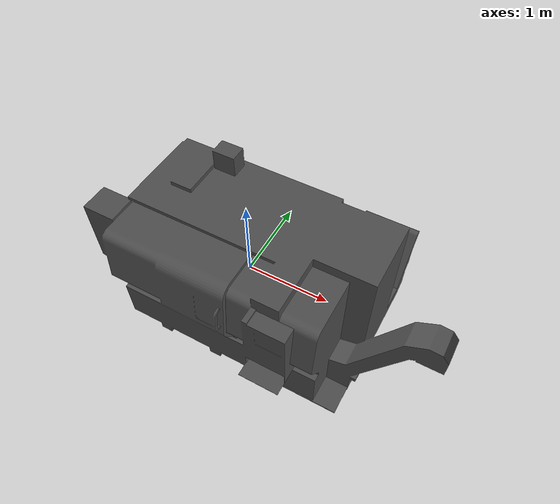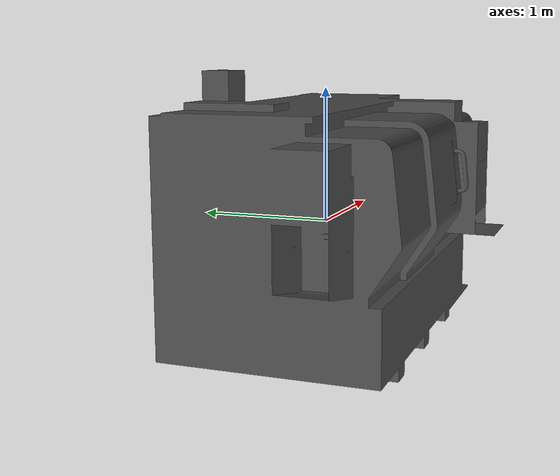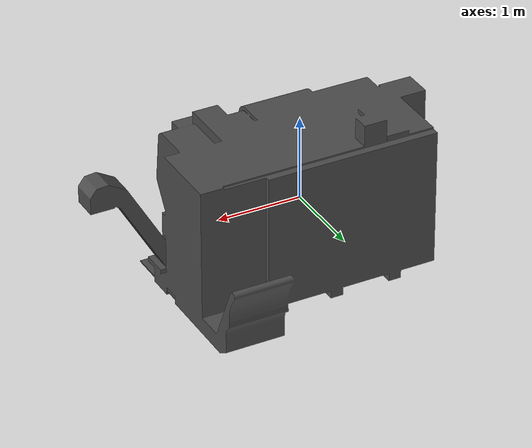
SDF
<?xml version='1.0'?>

<sdf version="1.6">
    <model name="HASS_ST_20">

        <link name='base_link'>
            <inertial>
                <pose>0 0 0 0 0 0</pose>
                <mass>4500</mass>
                <inertia>
                    <ixx>10000.02</ixx>
                    <ixy>0</ixy>
                    <ixz>0</ixz>
                    <iyy>10000.02</iyy>
                    <iyz>0</iyz>
                    <izz>10000.6</izz>
                </inertia>
            </inertial>
            <collision name='base_link_collision'>
                <pose>0 0.75 0 0 0 0</pose>
                <geometry>
                    <mesh>
                        <uri>model://HASS_ST_20/HASS_ST_20.dae</uri>
                    </mesh>
                </geometry>
                <surface>
                    <contact>
                        <ode>
                            <max_vel>100.0</max_vel>
                            <min_depth>0.001</min_depth>
                        </ode>
                    </contact>
                    <friction>
                        <ode>
                            <mu>2.0</mu>
                            <mu2>2.0</mu2>
                        </ode>
                    </friction>
                </surface>
            </collision>
            <visual name='base_link_visual'>
                <pose>0 0.75 0 0 0 0</pose>
                <geometry>
                    <mesh>
                        <uri>model://HASS_ST_20/HASS_ST_20.dae</uri>
                    </mesh>
                </geometry>
                <material>
                    <script>
                        <name>Gazebo/DarkGrey</name>
                    </script>
                </material>
            </visual>
            <self_collide>0</self_collide>
        </link>

    </model>
</sdf>
